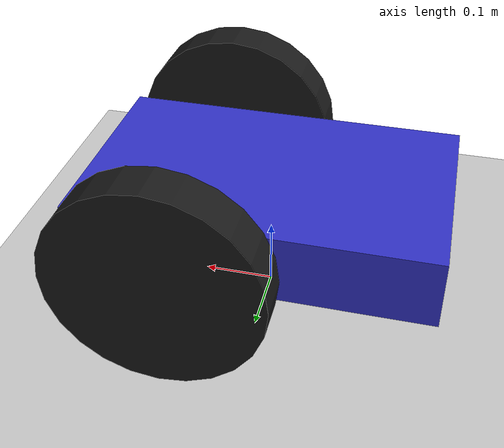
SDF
<?xml version="1.0" ?>
<sdf version="1.9">
  <world name="diff_drive_world">

    <physics name="1ms" type="ode">
      <max_step_size>0.001</max_step_size>
      <real_time_factor>1.0</real_time_factor>
    </physics>

    <plugin filename="gz-sim-physics-system" name="gz::sim::systems::Physics">
    </plugin>
    <plugin filename="gz-sim-user-commands-system" name="gz::sim::systems::UserCommands">
    </plugin>
    <plugin filename="gz-sim-scene-broadcaster-system" name="gz::sim::systems::SceneBroadcaster">
    </plugin>

    <light type="directional" name="sun">
      <cast_shadows>true</cast_shadows>
      <pose>0 0 10 0 0 0</pose>
      <diffuse>0.8 0.8 0.8 1</diffuse>
      <specular>0.2 0.2 0.2 1</specular>
      <attenuation>
        <range>1000</range>
        <constant>0.9</constant>
        <linear>0.01</linear>
        <quadratic>0.001</quadratic>
      </attenuation>
      <direction>-0.5 0.1 -0.9</direction>
    </light>

    <model name="ground_plane">
      <static>true</static>
      <link name="link">
        <collision name="collision">
          <geometry>
            <plane>
              <normal>0 0 1</normal>
              <size>100 100</size>
            </plane>
          </geometry>
          <surface>
            <friction>
              <ode>
                <mu>100</mu>
                <mu2>50</mu2>
              </ode>
            </friction>
          </surface>
        </collision>
        <visual name="visual">
          <geometry>
            <plane>
              <normal>0 0 1</normal>
              <size>100 100</size>
            </plane>
          </geometry>
          <material>
            <ambient>0.8 0.8 0.8 1</ambient>
            <diffuse>0.8 0.8 0.8 1</diffuse>
            <specular>0.8 0.8 0.8 1</specular>
          </material>
        </visual>
      </link>
    </model>

    <model name="diff_drive_robot">
      <pose>0 0 0 0 0 0</pose>

      <link name="chassis">
        <pose>0 0 0.15 0 0 0</pose>
        <inertial>
          <mass>5.0</mass>
          <inertia>
            <ixx>0.0625</ixx>
            <iyy>0.15</iyy>
            <izz>0.2</izz>
            <ixy>0</ixy>
            <ixz>0</ixz>
            <iyz>0</iyz>
          </inertia>
        </inertial>
        <collision name="collision">
          <geometry>
            <box>
              <size>0.5 0.3 0.1</size>
            </box>
          </geometry>
        </collision>
        <visual name="visual">
          <geometry>
            <box>
              <size>0.5 0.3 0.1</size>
            </box>
          </geometry>
          <material>
            <ambient>0.2 0.2 0.8 1</ambient>
            <diffuse>0.2 0.2 0.8 1</diffuse>
            <specular>0.2 0.2 0.2 1</specular>
          </material>
        </visual>
      </link>

      <link name="left_wheel">
        <pose>0.1 0.2 0.15 -1.5707963 0 0</pose>
        <inertial>
          <mass>0.5</mass>
          <inertia>
            <ixx>0.00194</ixx>
            <iyy>0.00194</iyy>
            <izz>0.00281</izz>
            <ixy>0</ixy>
            <ixz>0</ixz>
            <iyz>0</iyz>
          </inertia>
        </inertial>
        <collision name="collision">
          <geometry>
            <cylinder>
              <radius>0.15</radius>
              <length>0.06</length>
            </cylinder>
          </geometry>
          <surface>
            <friction>
              <ode>
                <mu>1.0</mu>
                <mu2>1.0</mu2>
              </ode>
            </friction>
          </surface>
        </collision>
        <visual name="visual">
          <geometry>
            <cylinder>
              <radius>0.15</radius>
              <length>0.06</length>
            </cylinder>
          </geometry>
          <material>
            <ambient>0.1 0.1 0.1 1</ambient>
            <diffuse>0.1 0.1 0.1 1</diffuse>
            <specular>0.1 0.1 0.1 1</specular>
          </material>
        </visual>
      </link>

      <link name="right_wheel">
        <pose>0.1 -0.2 0.15 -1.5707963 0 0</pose>
        <inertial>
          <mass>0.5</mass>
          <inertia>
            <ixx>0.00194</ixx>
            <iyy>0.00194</iyy>
            <izz>0.00281</izz>
            <ixy>0</ixy>
            <ixz>0</ixz>
            <iyz>0</iyz>
          </inertia>
        </inertial>
        <collision name="collision">
          <geometry>
            <cylinder>
              <radius>0.15</radius>
              <length>0.06</length>
            </cylinder>
          </geometry>
          <surface>
            <friction>
              <ode>
                <mu>1.0</mu>
                <mu2>1.0</mu2>
              </ode>
            </friction>
          </surface>
        </collision>
        <visual name="visual">
          <geometry>
            <cylinder>
              <radius>0.15</radius>
              <length>0.06</length>
            </cylinder>
          </geometry>
          <material>
            <ambient>0.1 0.1 0.1 1</ambient>
            <diffuse>0.1 0.1 0.1 1</diffuse>
            <specular>0.1 0.1 0.1 1</specular>
          </material>
        </visual>
      </link>

      <link name="caster">
        <pose>-0.15 0 0.05 0 0 0</pose>
        <inertial>
          <mass>0.2</mass>
          <inertia>
            <ixx>0.0001</ixx>
            <iyy>0.0001</iyy>
            <izz>0.0001</izz>
            <ixy>0</ixy>
            <ixz>0</ixz>
            <iyz>0</iyz>
          </inertia>
        </inertial>
        <collision name="collision">
          <geometry>
            <sphere>
              <radius>0.05</radius>
            </sphere>
          </geometry>
          <surface>
            <friction>
              <ode>
                <mu>0</mu>
                <mu2>0</mu2>
              </ode>
            </friction>
          </surface>
        </collision>
        <visual name="visual">
          <geometry>
            <sphere>
              <radius>0.05</radius>
            </sphere>
          </geometry>
          <material>
            <ambient>0.1 0.1 0.1 1</ambient>
            <diffuse>0.1 0.1 0.1 1</diffuse>
            <specular>0.1 0.1 0.1 1</specular>
          </material>
        </visual>
      </link>

      <joint name="left_wheel_joint" type="revolute">
        <parent>chassis</parent>
        <child>left_wheel</child>
        <axis>
          <xyz>0 0 1</xyz>
          <limit>
            <lower>-1.79769e+308</lower>
            <upper>1.79769e+308</upper>
          </limit>
        </axis>
      </joint>

      <joint name="right_wheel_joint" type="revolute">
        <parent>chassis</parent>
        <child>right_wheel</child>
        <axis>
          <xyz>0 0 1</xyz>
          <limit>
            <lower>-1.79769e+308</lower>
            <upper>1.79769e+308</upper>
          </limit>
        </axis>
      </joint>

      <joint name="caster_joint" type="ball">
        <parent>chassis</parent>
        <child>caster</child>
      </joint>

      <plugin filename="gz-sim-diff-drive-system" name="gz::sim::systems::DiffDrive">
        <left_joint>left_wheel_joint</left_joint>
        <right_joint>right_wheel_joint</right_joint>
        <wheel_separation>0.4</wheel_separation>
        <wheel_radius>0.15</wheel_radius>
        <odom_publish_frequency>50</odom_publish_frequency>
        <topic>/cmd_vel</topic>
        <odom_topic>/odom</odom_topic>
        <frame_id>odom</frame_id>
        <child_frame_id>chassis</child_frame_id>
      </plugin>

    </model>

  </world>
</sdf>
